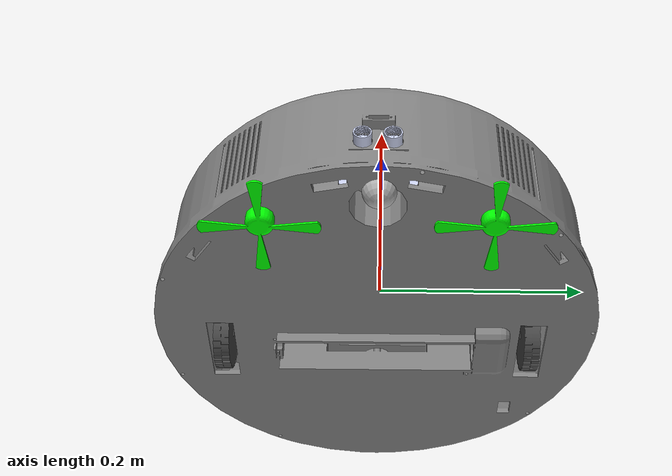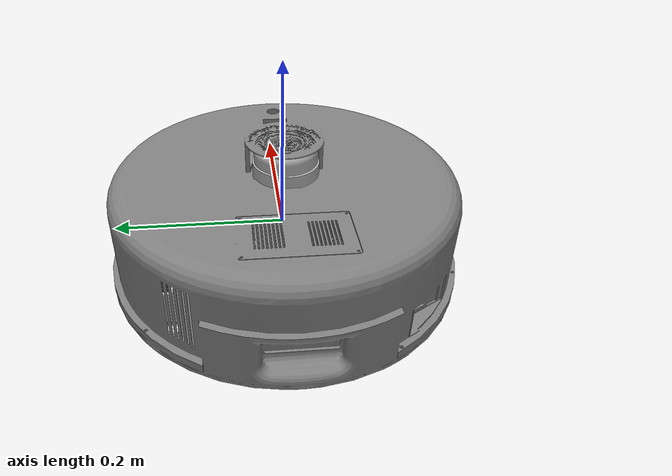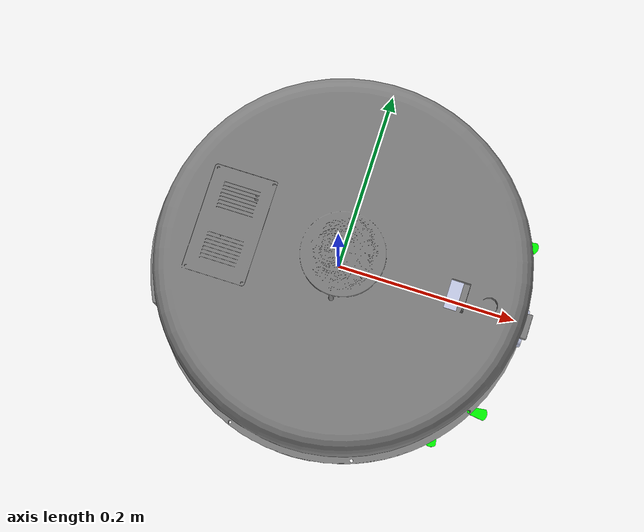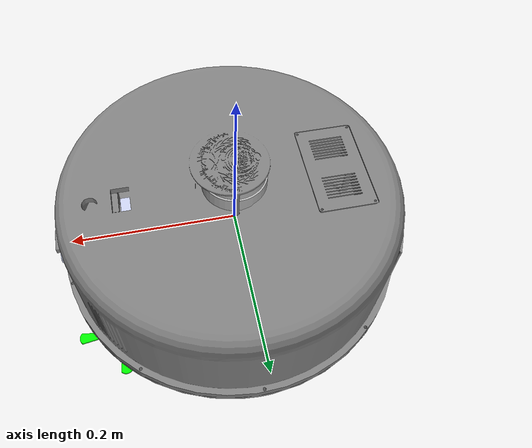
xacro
<?xml version="1.0"?>
<robot xmlns:xacro="http://ros.org/wiki/xacro" name="robot">
  <xacro:include filename="$(find soly)/urdf/robot.gazebo"/>
  <xacro:include filename="$(find soly)/urdf/sensor.xacro"/>

  <link name="base_link">
    <inertial>
      <origin xyz="-0.0091985 -0.0046828 0.0013048" rpy="0 0 0"/>
      <mass value="3.6805"/>
      <inertia
        ixx="0.038279"
        ixy="-0.00052205"
        ixz="-0.00014548"
        iyy="0.039097"
        iyz="-0.00021532"
        izz="0.071355"/>
    </inertial>
    <visual>
      <origin xyz="0 0 0" rpy="0 0 0"/>
      <geometry>
        <mesh filename="package://soly/meshes/base_link.STL"/>
      </geometry>
      <material name="">
        <color rgba="0.50196 0.50196 0.50196 1"/>
      </material>
    </visual>
    <collision>
      <origin xyz="0 0 0" rpy="0 0 0"/>
      <geometry>
        <mesh filename="package://soly/meshes/base_link.STL"/>
      </geometry>
    </collision>
  </link>

  <link name="battery_link">
    <inertial>
      <origin xyz="-0.020007 1.8219E-06 -7.6108E-05" rpy="0 0 0"/>
      <mass value="0.20743"/>
      <inertia
        ixx="0.00018362"
        ixy="-2.6787E-09"
        ixz="4.0731E-08"
        iyy="0.00010052"
        iyz="-1.0424E-08"
        izz="0.00013855"/>
    </inertial>
    <visual>
      <origin xyz="0 0 0" rpy="0 0 0"/>
      <geometry>
        <mesh filename="package://soly/meshes/battery_link.STL"/>
      </geometry>
      <material name="">
        <color rgba="0.79216 0.81961 0.93333 1"/>
      </material>
    </visual>
    <collision>
      <origin xyz="0 0 0" rpy="0 0 0"/>
      <geometry>
        <mesh filename="package://soly/meshes/battery_link.STL"/>
      </geometry>
    </collision>
  </link>

  <joint name="battery_joint" type="fixed">
    <origin xyz="0.13606 -0.0029825 -0.019543" rpy="0 0 0"/>
    <parent link="base_link"/>
    <child link="battery_link"/>
  </joint>

  <link name="left_wheel_link">
    <inertial>
      <origin xyz="0 0 0" rpy="0 0 0"/>
      <mass value="0.0542438382454859"/>
      <inertia
        ixx="1.71160505001731E-05"
        ixy="-6.89608314764242E-22"
        ixz="-6.11701678570096E-21"
        iyy="3.21979570661404E-05"
        iyz="3.40705658192294E-21"
        izz="1.7116050500173E-05"/>
    </inertial>
    <visual>
      <origin xyz="0 0 0" rpy="0 0 0"/>
      <geometry>
        <mesh filename="package://soly/meshes/left_wheel_link.STL"/>
      </geometry>
      <material name="">
        <color rgba="0.298039215686275 0.298039215686275 0.298039215686275 1"/>
      </material>
    </visual>
    <collision>
      <origin xyz="0 0 0" rpy="0 0 0"/>
      <geometry>
        <mesh filename="package://soly/meshes/left_wheel_link.STL"/>
      </geometry>
    </collision>
  </link>

  <joint name="left_wheel_joint" type="continuous">
    <origin xyz="-0.024436 -0.15163 -0.036043" rpy="0 0 0"/>
    <parent link="base_link"/>
    <child link="left_wheel_link"/>
    <axis xyz="0 -1 0"/>
  </joint>

  <link name="right_wheel_link">
    <inertial>
      <origin xyz="0 -0.00749999999999998 2.77555756156289E-17" rpy="0 0 0"/>
      <mass value="0.0542438382454859"/>
      <inertia
        ixx="1.71160505001731E-05"
        ixy="4.54094771042603E-21"
        ixz="-5.82887682037124E-21"
        iyy="3.21979570661404E-05"
        iyz="4.54869079375004E-21"
        izz="1.7116050500173E-05"/>
    </inertial>
    <visual>
      <origin xyz="0 0 0" rpy="0 0 0"/>
      <geometry>
        <mesh filename="package://soly/meshes/right_wheel_link.STL"/>
      </geometry>
      <material name="">
        <color rgba="0.298039215686275 0.298039215686275 0.298039215686275 1"/>
      </material>
    </visual>
    <collision>
      <origin xyz="0 0 0" rpy="0 0 0"/>
      <geometry>
        <mesh filename="package://soly/meshes/right_wheel_link.STL"/>
      </geometry>
    </collision>
  </link>

  <joint name="right_wheel_joint" type="continuous">
    <origin xyz="-0.024436 0.15417 -0.036043" rpy="0 0 0"/>
    <parent link="base_link"/>
    <child link="right_wheel_link"/>
    <axis xyz="0 1 0"/>
  </joint>

  <link name="right_side_brush_link">
    <inertial>
      <origin xyz="6.93889390390723E-16 -3.19189119579733E-16 0.00606427210631377" rpy="0 0 0"/>
      <mass value="0.0121949722901118"/>
      <inertia
        ixx="2.93228333981093E-06"
        ixy="-7.34916189715922E-20"
        ixz="-1.77311758017326E-20"
        iyy="2.93228333981094E-06"
        iyz="9.57791703148365E-21"
        izz="5.29854321484753E-06"/>
    </inertial>
    <visual>
      <origin xyz="0 0 0" rpy="0 0 0"/>
      <geometry>
        <mesh filename="package://soly/meshes/right_side_brush_link.STL"/>
      </geometry>
      <material name="">
        <color rgba="0 1 0 1"/>
      </material>
    </visual>
    <collision>
      <origin xyz="0 0 0" rpy="0 0 0"/>
      <geometry>
        <mesh filename="package://soly/meshes/right_side_brush_link.STL"/>
      </geometry>
    </collision>
  </link>

  <joint name="right_side_brush_joint" type="continuous">
    <origin xyz="0.15656 0.097517 -0.068043" rpy="0 0 0"/>
    <parent link="base_link"/>
    <child link="right_side_brush_link"/>
    <axis xyz="0 0 1"/>
  </joint>

  <!-- Adding the new link (link_1) -->
  <link name="link_1">
    <inertial>
      <origin xyz="0 0 0" rpy="0 0 0"/>
      <mass value="0.0286112"/>
      <inertia ixx="2.58e-06" ixy="0" ixz="0" iyy="2.58e-06" iyz="0" izz="2.58e-06"/>
    </inertial>
    <visual>
      <origin xyz="0 0 0" rpy="0 0 0"/>
      <geometry>
        <sphere radius="0.015"/>
      </geometry>
      <material name="Gazebo/Grey">
        <color rgba="0.7 0.7 0.7 1"/>
      </material>
      <cast_shadows>true</cast_shadows>
    </visual>
    <collision>
      <origin xyz="0 0 0" rpy="0 0 0"/>
      <geometry>
        <sphere radius="0.015"/>
      </geometry>
      <surface>
        <friction>
          <ode>
            <mu>1</mu>
            <mu2>1</mu2>
            <fdir1>0 0 0</fdir1>
            <slip1>0</slip1>
            <slip2>0</slip2>
          </ode>
        </friction>
        <bounce>
          <restitution_coefficient>0</restitution_coefficient>
          <threshold>1e+06</threshold>
        </bounce>
        <contact>
          <collide_without_contact>0</collide_without_contact>
          <collide_bitmask>1</collide_bitmask>
          <ode>
            <soft_cfm>0</soft_cfm>
            <soft_erp>0.2</soft_erp>
            <kp>1e+13</kp>
            <kd>1</kd>
            <max_vel>0.01</max_vel>
            <min_depth>0</min_depth>
          </ode>
        </contact>
      </surface>
    </collision>
  </link>

  <joint name="link_1_joint" type="continuous">
    <parent link="base_link"/>
    <child link="link_1"/>
    <origin xyz="0.186367 -0.001405 -0.055595" rpy="0.003639 0.025 0.147249"/>
  </joint>
  <link name="left_side_brush_link">
    <inertial>
      <origin xyz="5.82867087928207E-16 -3.60822483003176E-16 0.00622801767407707" rpy="0 0 0"/>
      <mass value="0.0123176907531427"/>
      <inertia ixx="2.96555080657689E-06" ixy="-1.04446932724667E-19" ixz="-2.20739327648771E-20"
               iyy="2.96555080657689E-06" iyz="1.16049378174348E-20" izz="5.29892671004455E-06"/>
    </inertial>
    <visual>
      <origin xyz="0 0 0" rpy="0 0 0"/>
      <geometry>
        <mesh filename="package://soly/meshes/left_side_brush_link.STL"/>
      </geometry>
      <material name="">
        <color rgba="0 1 0 1"/>
      </material>
    </visual>
    <collision>
      <origin xyz="0 0 0" rpy="0 0 0"/>
      <geometry>
        <mesh filename="package://soly/meshes/left_side_brush_link.STL"/>
      </geometry>
    </collision>
  </link>

  <joint name="left_side_brush_joint" type="continuous">
    <origin xyz="0.154755037176872 -0.102597387942504 -0.0683840444516484" rpy="0 0 0"/>
    <parent link="base_link"/>
    <child link="left_side_brush_link"/>
    <axis xyz="0 0 1"/>
  </joint>
</robot>

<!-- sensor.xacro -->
<robot xmlns:xacro="http://ros.org/wiki/xacro" name="robot">

  <link name="lidar_link">
    <inertial>
      <origin xyz="-0.0300318871029288 -1.4396172640152E-05 -0.0117015085354246" rpy="0 0 0" />
      <mass value="0.206728439544989" />
      <inertia ixx="9.85814795131668E-05" ixy="6.05897051150735E-08" ixz="2.73099304949762E-06"
               iyy="9.39878643673402E-05" iyz="3.60751965637769E-08" izz="0.000137433441323384" />
    </inertial>
    <visual>
      <origin xyz="0 0 0" rpy="0 0 0" />
      <geometry>
        <mesh filename="package://soly/meshes/lidar_link.STL" />
      </geometry>
      <material name="lidar_material">
        <color rgba="0.698 0.698 0.698 1" />
      </material>
    </visual>
    <collision>
      <origin xyz="0 0 0" rpy="0 0 0" />
      <geometry>
        <mesh filename="package://soly/meshes/lidar_link.STL" />
      </geometry>
    </collision>
  </link>

  <joint name="lidar_joint" type="fixed">
    <origin xyz="0.029596 -0.0037429 0.095257" rpy="0 0 0" />
    <parent link="base_link" />
    <child link="lidar_link" />
    <dontPublish>true</dontPublish> <!-- Add this line -->

  </joint>

  <link name="ultrasonic_link">
    <inertial>
      <origin xyz="-0.0135129398527418 -0.000885994358649805 0.000138154717298" rpy="0 0 0" />
      <mass value="0.00391542529593063" />
      <inertia ixx="3.1796509412328E-07" ixy="1.79491252116504E-23" ixz="-3.28175160545291E-11"
               iyy="1.03578988309517E-07" iyz="1.13097335529237E-09" izz="2.48381258422786E-07" />
    </inertial>
    <visual>
      <origin xyz="0 0 0" rpy="0 0 0" />
      <geometry>
        <mesh filename="package://soly/meshes/ultrasonic_link.STL" />
      </geometry>
      <material name="ultrasonic_material">
        <color rgba="0.792 0.820 0.933 1" />
      </material>
    </visual>
    <collision>
      <origin xyz="0 0 0" rpy="0 0 0" />
      <geometry>
        <mesh filename="package://soly/meshes/ultrasonic_link.STL" />
      </geometry>
    </collision>
  </link>

  <joint name="ultrasonic_joint" type="fixed">
    <origin xyz="0.20263 -0.0032064 -0.013163" rpy="0 0 0" />
    <parent link="base_link" />
    <child link="ultrasonic_link" />
   <dontPublish>true</dontPublish> <!-- Add this line -->

  </joint>
</robot>
